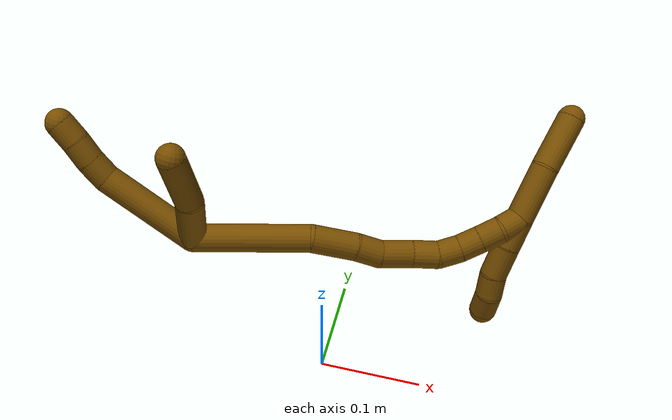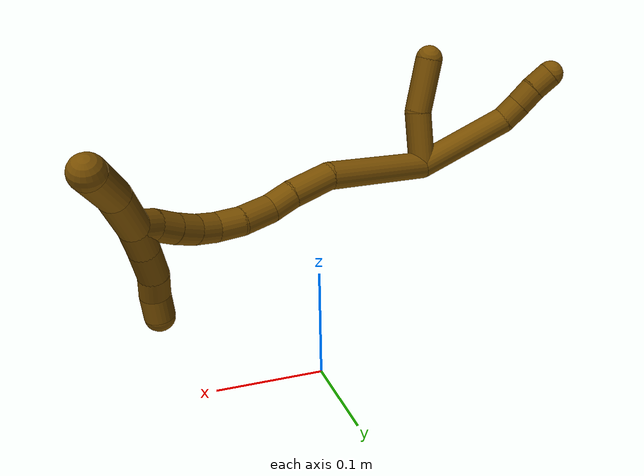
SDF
<sdf version="1.7">
 <world name="default">
  <model name="12">
   <static>0</static>
   <link name="12">
    <collision name="collision-cylinder-e_1_2_8">
     <pose>-0.041397 0.004886 0.016198 -0.292952 -1.18282 0.197521</pose>
     <geometry><cylinder><radius>0.0125</radius><length>0.089441</length></cylinder></geometry>
     <surface>
      <friction><ode><mu>1.16</mu><mu2>1.16</mu2><slip1>0</slip1><slip2>0</slip2></ode></friction>
      <contact><ode><kp>1e+06</kp><kd>1</kd><max_vel>0</max_vel><min_depth>0.001</min_depth></ode></contact>
     </surface>
    </collision>
    <visual name="visual-cylinder-e_1_2_8">
     <pose>-0.041397 0.004886 0.016198 -0.292952 -1.18282 0.197521</pose>
     <geometry><cylinder><radius>0.0125</radius><length>0.089441</length></cylinder></geometry>
     <material><ambient>0.466667 0.301961 0 1</ambient></material>
    </visual>
    <collision name="collision-cylinder-e_2_8_9">
     <pose>-0.090848 0.009129 0.038418 0.106281 -0.926094 -0.053098</pose>
     <geometry><cylinder><radius>0.0125</radius><length>0.020156</length></cylinder></geometry>
     <surface>
      <friction><ode><mu>1.16</mu><mu2>1.16</mu2><slip1>0</slip1><slip2>0</slip2></ode></friction>
      <contact><ode><kp>1e+06</kp><kd>1</kd><max_vel>0</max_vel><min_depth>0.001</min_depth></ode></contact>
     </surface>
    </collision>
    <visual name="visual-cylinder-e_2_8_9">
     <pose>-0.090848 0.009129 0.038418 0.106281 -0.926094 -0.053098</pose>
     <geometry><cylinder><radius>0.0125</radius><length>0.020156</length></cylinder></geometry>
     <material><ambient>0.466667 0.301961 0 1</ambient></material>
    </visual>
    <collision name="collision-cylinder-e_3_9_10">
     <pose>-0.106262 0.007947 0.051337 0.078016 -0.816191 -0.033746</pose>
     <geometry><cylinder><radius>0.0125</radius><length>0.0202</length></cylinder></geometry>
     <surface>
      <friction><ode><mu>1.16</mu><mu2>1.16</mu2><slip1>0</slip1><slip2>0</slip2></ode></friction>
      <contact><ode><kp>1e+06</kp><kd>1</kd><max_vel>0</max_vel><min_depth>0.001</min_depth></ode></contact>
     </surface>
    </collision>
    <visual name="visual-cylinder-e_3_9_10">
     <pose>-0.106262 0.007947 0.051337 0.078016 -0.816191 -0.033746</pose>
     <geometry><cylinder><radius>0.0125</radius><length>0.0202</length></cylinder></geometry>
     <material><ambient>0.466667 0.301961 0 1</ambient></material>
    </visual>
    <collision name="collision-cylinder-e_4_10_6">
     <pose>-0.121576 0.007657 0.064454 -0.040054 -0.906952 0.019522</pose>
     <geometry><cylinder><radius>0.0125</radius><length>0.020203</length></cylinder></geometry>
     <surface>
      <friction><ode><mu>1.16</mu><mu2>1.16</mu2><slip1>0</slip1><slip2>0</slip2></ode></friction>
      <contact><ode><kp>1e+06</kp><kd>1</kd><max_vel>0</max_vel><min_depth>0.001</min_depth></ode></contact>
     </surface>
    </collision>
    <visual name="visual-cylinder-e_4_10_6">
     <pose>-0.121576 0.007657 0.064454 -0.040054 -0.906952 0.019522</pose>
     <geometry><cylinder><radius>0.0125</radius><length>0.020203</length></cylinder></geometry>
     <material><ambient>0.466667 0.301961 0 1</ambient></material>
    </visual>
    <collision name="collision-cylinder-e_1_2_11">
     <pose>-0.004581 -0.015478 0.019566 0.669266 -0.181618 -0.063303</pose>
     <geometry><cylinder><radius>0.0125</radius><length>0.05073</length></cylinder></geometry>
     <surface>
      <friction><ode><mu>1.16</mu><mu2>1.16</mu2><slip1>0</slip1><slip2>0</slip2></ode></friction>
      <contact><ode><kp>1e+06</kp><kd>1</kd><max_vel>0</max_vel><min_depth>0.001</min_depth></ode></contact>
     </surface>
    </collision>
    <visual name="visual-cylinder-e_1_2_11">
     <pose>-0.004581 -0.015478 0.019566 0.669266 -0.181618 -0.063303</pose>
     <geometry><cylinder><radius>0.0125</radius><length>0.05073</length></cylinder></geometry>
     <material><ambient>0.466667 0.301961 0 1</ambient></material>
    </visual>
    <collision name="collision-cylinder-e_2_11_5">
     <pose>-0.019917 -0.042709 0.057922 0.558963 -0.451753 -0.13171</pose>
     <geometry><cylinder><radius>0.0125</radius><length>0.04927</length></cylinder></geometry>
     <surface>
      <friction><ode><mu>1.16</mu><mu2>1.16</mu2><slip1>0</slip1><slip2>0</slip2></ode></friction>
      <contact><ode><kp>1e+06</kp><kd>1</kd><max_vel>0</max_vel><min_depth>0.001</min_depth></ode></contact>
     </surface>
    </collision>
    <visual name="visual-cylinder-e_2_11_5">
     <pose>-0.019917 -0.042709 0.057922 0.558963 -0.451753 -0.13171</pose>
     <geometry><cylinder><radius>0.0125</radius><length>0.04927</length></cylinder></geometry>
     <material><ambient>0.466667 0.301961 0 1</ambient></material>
    </visual>
    <collision name="collision-cylinder-e_1_2_12">
     <pose>0.049775 -0.005451 0.012964 0.398003 1.29543 0.302835</pose>
     <geometry><cylinder><radius>0.0125</radius><length>0.103448</length></cylinder></geometry>
     <surface>
      <friction><ode><mu>1.16</mu><mu2>1.16</mu2><slip1>0</slip1><slip2>0</slip2></ode></friction>
      <contact><ode><kp>1e+06</kp><kd>1</kd><max_vel>0</max_vel><min_depth>0.001</min_depth></ode></contact>
     </surface>
    </collision>
    <visual name="visual-cylinder-e_1_2_12">
     <pose>0.049775 -0.005451 0.012964 0.398003 1.29543 0.302835</pose>
     <geometry><cylinder><radius>0.0125</radius><length>0.103448</length></cylinder></geometry>
     <material><ambient>0.466667 0.301961 0 1</ambient></material>
    </visual>
    <collision name="collision-cylinder-e_2_12_13">
     <pose>0.119541 -0.009192 0.026136 -1.44997 1.48487 -1.3651</pose>
     <geometry><cylinder><radius>0.0125</radius><length>0.040129</length></cylinder></geometry>
     <surface>
      <friction><ode><mu>1.16</mu><mu2>1.16</mu2><slip1>0</slip1><slip2>0</slip2></ode></friction>
      <contact><ode><kp>1e+06</kp><kd>1</kd><max_vel>0</max_vel><min_depth>0.001</min_depth></ode></contact>
     </surface>
    </collision>
    <visual name="visual-cylinder-e_2_12_13">
     <pose>0.119541 -0.009192 0.026136 -1.44997 1.48487 -1.3651</pose>
     <geometry><cylinder><radius>0.0125</radius><length>0.040129</length></cylinder></geometry>
     <material><ambient>0.466667 0.301961 0 1</ambient></material>
    </visual>
    <collision name="collision-cylinder-e_3_13_14">
     <pose>0.150902 -0.005744 0.02506 -2.2068 1.38294 -2.04659</pose>
     <geometry><cylinder><radius>0.0125</radius><length>0.023148</length></cylinder></geometry>
     <surface>
      <friction><ode><mu>1.16</mu><mu2>1.16</mu2><slip1>0</slip1><slip2>0</slip2></ode></friction>
      <contact><ode><kp>1e+06</kp><kd>1</kd><max_vel>0</max_vel><min_depth>0.001</min_depth></ode></contact>
     </surface>
    </collision>
    <visual name="visual-cylinder-e_3_13_14">
     <pose>0.150902 -0.005744 0.02506 -2.2068 1.38294 -2.04659</pose>
     <geometry><cylinder><radius>0.0125</radius><length>0.023148</length></cylinder></geometry>
     <material><ambient>0.466667 0.301961 0 1</ambient></material>
    </visual>
    <collision name="collision-cylinder-e_4_14_15">
     <pose>0.176736 -0.001876 0.026481 -0.666769 1.33715 -0.534063</pose>
     <geometry><cylinder><radius>0.0125</radius><length>0.029735</length></cylinder></geometry>
     <surface>
      <friction><ode><mu>1.16</mu><mu2>1.16</mu2><slip1>0</slip1><slip2>0</slip2></ode></friction>
      <contact><ode><kp>1e+06</kp><kd>1</kd><max_vel>0</max_vel><min_depth>0.001</min_depth></ode></contact>
     </surface>
    </collision>
    <visual name="visual-cylinder-e_4_14_15">
     <pose>0.176736 -0.001876 0.026481 -0.666769 1.33715 -0.534063</pose>
     <geometry><cylinder><radius>0.0125</radius><length>0.029735</length></cylinder></geometry>
     <material><ambient>0.466667 0.301961 0 1</ambient></material>
    </visual>
    <collision name="collision-cylinder-e_5_15_16">
     <pose>0.202713 -0.000265 0.031523 0.218221 1.36577 0.177749</pose>
     <geometry><cylinder><radius>0.0125</radius><length>0.023519</length></cylinder></geometry>
     <surface>
      <friction><ode><mu>1.16</mu><mu2>1.16</mu2><slip1>0</slip1><slip2>0</slip2></ode></friction>
      <contact><ode><kp>1e+06</kp><kd>1</kd><max_vel>0</max_vel><min_depth>0.001</min_depth></ode></contact>
     </surface>
    </collision>
    <visual name="visual-cylinder-e_5_15_16">
     <pose>0.202713 -0.000265 0.031523 0.218221 1.36577 0.177749</pose>
     <geometry><cylinder><radius>0.0125</radius><length>0.023519</length></cylinder></geometry>
     <material><ambient>0.466667 0.301961 0 1</ambient></material>
    </visual>
    <collision name="collision-cylinder-e_6_16_17">
     <pose>0.222974 -0.000137 0.038679 -0.133381 1.0636 -0.07855</pose>
     <geometry><cylinder><radius>0.0125</radius><length>0.020016</length></cylinder></geometry>
     <surface>
      <friction><ode><mu>1.16</mu><mu2>1.16</mu2><slip1>0</slip1><slip2>0</slip2></ode></friction>
      <contact><ode><kp>1e+06</kp><kd>1</kd><max_vel>0</max_vel><min_depth>0.001</min_depth></ode></contact>
     </surface>
    </collision>
    <visual name="visual-cylinder-e_6_16_17">
     <pose>0.222974 -0.000137 0.038679 -0.133381 1.0636 -0.07855</pose>
     <geometry><cylinder><radius>0.0125</radius><length>0.020016</length></cylinder></geometry>
     <material><ambient>0.466667 0.301961 0 1</ambient></material>
    </visual>
    <collision name="collision-cylinder-e_7_17_18">
     <pose>0.239609 0.000729 0.049641 -0.03584 0.908625 -0.017505</pose>
     <geometry><cylinder><radius>0.0125</radius><length>0.02</length></cylinder></geometry>
     <surface>
      <friction><ode><mu>1.16</mu><mu2>1.16</mu2><slip1>0</slip1><slip2>0</slip2></ode></friction>
      <contact><ode><kp>1e+06</kp><kd>1</kd><max_vel>0</max_vel><min_depth>0.001</min_depth></ode></contact>
     </surface>
    </collision>
    <visual name="visual-cylinder-e_7_17_18">
     <pose>0.239609 0.000729 0.049641 -0.03584 0.908625 -0.017505</pose>
     <geometry><cylinder><radius>0.0125</radius><length>0.02</length></cylinder></geometry>
     <material><ambient>0.466667 0.301961 0 1</ambient></material>
    </visual>
    <collision name="collision-cylinder-e_8_18_19">
     <pose>0.255047 0.000583 0.062333 0.05595 0.855709 0.02552</pose>
     <geometry><cylinder><radius>0.0125</radius><length>0.020001</length></cylinder></geometry>
     <surface>
      <friction><ode><mu>1.16</mu><mu2>1.16</mu2><slip1>0</slip1><slip2>0</slip2></ode></friction>
      <contact><ode><kp>1e+06</kp><kd>1</kd><max_vel>0</max_vel><min_depth>0.001</min_depth></ode></contact>
     </surface>
    </collision>
    <visual name="visual-cylinder-e_8_18_19">
     <pose>0.255047 0.000583 0.062333 0.05595 0.855709 0.02552</pose>
     <geometry><cylinder><radius>0.0125</radius><length>0.020001</length></cylinder></geometry>
     <material><ambient>0.466667 0.301961 0 1</ambient></material>
    </visual>
    <collision name="collision-cylinder-e_9_19_1">
     <pose>0.270091 0.002473 0.075108 -0.347644 0.846875 -0.157952</pose>
     <geometry><cylinder><radius>0.0125</radius><length>0.020003</length></cylinder></geometry>
     <surface>
      <friction><ode><mu>1.16</mu><mu2>1.16</mu2><slip1>0</slip1><slip2>0</slip2></ode></friction>
      <contact><ode><kp>1e+06</kp><kd>1</kd><max_vel>0</max_vel><min_depth>0.001</min_depth></ode></contact>
     </surface>
    </collision>
    <visual name="visual-cylinder-e_9_19_1">
     <pose>0.270091 0.002473 0.075108 -0.347644 0.846875 -0.157952</pose>
     <geometry><cylinder><radius>0.0125</radius><length>0.020003</length></cylinder></geometry>
     <material><ambient>0.466667 0.301961 0 1</ambient></material>
    </visual>
    <collision name="collision-cylinder-e_1_1_20">
     <pose>0.282625 0.008021 0.105695 -0.134294 0.202287 -0.01365</pose>
     <geometry><cylinder><radius>0.0125</radius><length>0.050185</length></cylinder></geometry>
     <surface>
      <friction><ode><mu>1.16</mu><mu2>1.16</mu2><slip1>0</slip1><slip2>0</slip2></ode></friction>
      <contact><ode><kp>1e+06</kp><kd>1</kd><max_vel>0</max_vel><min_depth>0.001</min_depth></ode></contact>
     </surface>
    </collision>
    <visual name="visual-cylinder-e_1_1_20">
     <pose>0.282625 0.008021 0.105695 -0.134294 0.202287 -0.01365</pose>
     <geometry><cylinder><radius>0.0125</radius><length>0.050185</length></cylinder></geometry>
     <material><ambient>0.466667 0.301961 0 1</ambient></material>
    </visual>
    <collision name="collision-cylinder-e_2_20_4">
     <pose>0.294728 0.01868 0.152775 -0.313588 0.287423 -0.045747</pose>
     <geometry><cylinder><radius>0.0125</radius><length>0.049815</length></cylinder></geometry>
     <surface>
      <friction><ode><mu>1.16</mu><mu2>1.16</mu2><slip1>0</slip1><slip2>0</slip2></ode></friction>
      <contact><ode><kp>1e+06</kp><kd>1</kd><max_vel>0</max_vel><min_depth>0.001</min_depth></ode></contact>
     </surface>
    </collision>
    <visual name="visual-cylinder-e_2_20_4">
     <pose>0.294728 0.01868 0.152775 -0.313588 0.287423 -0.045747</pose>
     <geometry><cylinder><radius>0.0125</radius><length>0.049815</length></cylinder></geometry>
     <material><ambient>0.466667 0.301961 0 1</ambient></material>
    </visual>
    <collision name="collision-cylinder-e_1_1_21">
     <pose>0.276097 0.00575 0.067813 -3.06631 -0.10919 1.9349</pose>
     <geometry><cylinder><radius>0.0125</radius><length>0.027285</length></cylinder></geometry>
     <surface>
      <friction><ode><mu>1.16</mu><mu2>1.16</mu2><slip1>0</slip1><slip2>0</slip2></ode></friction>
      <contact><ode><kp>1e+06</kp><kd>1</kd><max_vel>0</max_vel><min_depth>0.001</min_depth></ode></contact>
     </surface>
    </collision>
    <visual name="visual-cylinder-e_1_1_21">
     <pose>0.276097 0.00575 0.067813 -3.06631 -0.10919 1.9349</pose>
     <geometry><cylinder><radius>0.0125</radius><length>0.027285</length></cylinder></geometry>
     <material><ambient>0.466667 0.301961 0 1</ambient></material>
    </visual>
    <collision name="collision-cylinder-e_2_21_22">
     <pose>0.273573 0.009314 0.039392 -2.97246 -0.068573 0.768998</pose>
     <geometry><cylinder><radius>0.0125</radius><length>0.030298</length></cylinder></geometry>
     <surface>
      <friction><ode><mu>1.16</mu><mu2>1.16</mu2><slip1>0</slip1><slip2>0</slip2></ode></friction>
      <contact><ode><kp>1e+06</kp><kd>1</kd><max_vel>0</max_vel><min_depth>0.001</min_depth></ode></contact>
     </surface>
    </collision>
    <visual name="visual-cylinder-e_2_21_22">
     <pose>0.273573 0.009314 0.039392 -2.97246 -0.068573 0.768998</pose>
     <geometry><cylinder><radius>0.0125</radius><length>0.030298</length></cylinder></geometry>
     <material><ambient>0.466667 0.301961 0 1</ambient></material>
    </visual>
    <collision name="collision-cylinder-e_3_22_23">
     <pose>0.273992 0.013922 0.014214 -2.94341 0.138093 -1.21557</pose>
     <geometry><cylinder><radius>0.0125</radius><length>0.021172</length></cylinder></geometry>
     <surface>
      <friction><ode><mu>1.16</mu><mu2>1.16</mu2><slip1>0</slip1><slip2>0</slip2></ode></friction>
      <contact><ode><kp>1e+06</kp><kd>1</kd><max_vel>0</max_vel><min_depth>0.001</min_depth></ode></contact>
     </surface>
    </collision>
    <visual name="visual-cylinder-e_3_22_23">
     <pose>0.273992 0.013922 0.014214 -2.94341 0.138093 -1.21557</pose>
     <geometry><cylinder><radius>0.0125</radius><length>0.021172</length></cylinder></geometry>
     <material><ambient>0.466667 0.301961 0 1</ambient></material>
    </visual>
    <collision name="collision-cylinder-e_4_23_3">
     <pose>0.276462 0.020723 -0.00552 -2.67718 0.095537 -0.398936</pose>
     <geometry><cylinder><radius>0.0125</radius><length>0.021245</length></cylinder></geometry>
     <surface>
      <friction><ode><mu>1.16</mu><mu2>1.16</mu2><slip1>0</slip1><slip2>0</slip2></ode></friction>
      <contact><ode><kp>1e+06</kp><kd>1</kd><max_vel>0</max_vel><min_depth>0.001</min_depth></ode></contact>
     </surface>
    </collision>
    <visual name="visual-cylinder-e_4_23_3">
     <pose>0.276462 0.020723 -0.00552 -2.67718 0.095537 -0.398936</pose>
     <geometry><cylinder><radius>0.0125</radius><length>0.021245</length></cylinder></geometry>
     <material><ambient>0.466667 0.301961 0 1</ambient></material>
    </visual>
    <collision name="collision-sphere-3">
     <pose>0.277476 0.025459 -0.014974 0 -0 0</pose>
     <geometry><sphere><radius>0.0125</radius></sphere></geometry>
     <surface>
      <friction><ode><mu>1.16</mu><mu2>1.16</mu2><slip1>0</slip1><slip2>0</slip2></ode></friction>
      <contact><ode><kp>1e+06</kp><kd>1</kd><max_vel>0</max_vel><min_depth>0.001</min_depth></ode></contact>
     </surface>
    </collision>
    <visual name="visual-sphere-3">
     <pose>0.277476 0.025459 -0.014974 0 -0 0</pose>
     <geometry><sphere><radius>0.0125</radius></sphere></geometry>
     <material><ambient>0.466667 0.301961 0 1</ambient></material>
    </visual>
    <collision name="collision-sphere-23">
     <pose>0.275449 0.015986 0.003935 0 -0 0</pose>
     <geometry><sphere><radius>0.0125</radius></sphere></geometry>
     <surface>
      <friction><ode><mu>1.16</mu><mu2>1.16</mu2><slip1>0</slip1><slip2>0</slip2></ode></friction>
      <contact><ode><kp>1e+06</kp><kd>1</kd><max_vel>0</max_vel><min_depth>0.001</min_depth></ode></contact>
     </surface>
    </collision>
    <visual name="visual-sphere-23">
     <pose>0.275449 0.015986 0.003935 0 -0 0</pose>
     <geometry><sphere><radius>0.0125</radius></sphere></geometry>
     <material><ambient>0.466667 0.301961 0 1</ambient></material>
    </visual>
    <collision name="collision-sphere-22">
     <pose>0.272535 0.011858 0.024494 0 -0 0</pose>
     <geometry><sphere><radius>0.0125</radius></sphere></geometry>
     <surface>
      <friction><ode><mu>1.16</mu><mu2>1.16</mu2><slip1>0</slip1><slip2>0</slip2></ode></friction>
      <contact><ode><kp>1e+06</kp><kd>1</kd><max_vel>0</max_vel><min_depth>0.001</min_depth></ode></contact>
     </surface>
    </collision>
    <visual name="visual-sphere-22">
     <pose>0.272535 0.011858 0.024494 0 -0 0</pose>
     <geometry><sphere><radius>0.0125</radius></sphere></geometry>
     <material><ambient>0.466667 0.301961 0 1</ambient></material>
    </visual>
    <collision name="collision-sphere-21">
     <pose>0.274611 0.00677 0.05429 0 -0 0</pose>
     <geometry><sphere><radius>0.0125</radius></sphere></geometry>
     <surface>
      <friction><ode><mu>1.16</mu><mu2>1.16</mu2><slip1>0</slip1><slip2>0</slip2></ode></friction>
      <contact><ode><kp>1e+06</kp><kd>1</kd><max_vel>0</max_vel><min_depth>0.001</min_depth></ode></contact>
     </surface>
    </collision>
    <visual name="visual-sphere-21">
     <pose>0.274611 0.00677 0.05429 0 -0 0</pose>
     <geometry><sphere><radius>0.0125</radius></sphere></geometry>
     <material><ambient>0.466667 0.301961 0 1</ambient></material>
    </visual>
    <collision name="collision-sphere-4">
     <pose>0.301788 0.026049 0.175496 0 -0 0</pose>
     <geometry><sphere><radius>0.0125</radius></sphere></geometry>
     <surface>
      <friction><ode><mu>1.16</mu><mu2>1.16</mu2><slip1>0</slip1><slip2>0</slip2></ode></friction>
      <contact><ode><kp>1e+06</kp><kd>1</kd><max_vel>0</max_vel><min_depth>0.001</min_depth></ode></contact>
     </surface>
    </collision>
    <visual name="visual-sphere-4">
     <pose>0.301788 0.026049 0.175496 0 -0 0</pose>
     <geometry><sphere><radius>0.0125</radius></sphere></geometry>
     <material><ambient>0.466667 0.301961 0 1</ambient></material>
    </visual>
    <collision name="collision-sphere-20">
     <pose>0.287667 0.011312 0.130054 0 -0 0</pose>
     <geometry><sphere><radius>0.0125</radius></sphere></geometry>
     <surface>
      <friction><ode><mu>1.16</mu><mu2>1.16</mu2><slip1>0</slip1><slip2>0</slip2></ode></friction>
      <contact><ode><kp>1e+06</kp><kd>1</kd><max_vel>0</max_vel><min_depth>0.001</min_depth></ode></contact>
     </surface>
    </collision>
    <visual name="visual-sphere-20">
     <pose>0.287667 0.011312 0.130054 0 -0 0</pose>
     <geometry><sphere><radius>0.0125</radius></sphere></geometry>
     <material><ambient>0.466667 0.301961 0 1</ambient></material>
    </visual>
    <collision name="collision-sphere-11">
     <pose>-0.009163 -0.030955 0.039132 0 -0 0</pose>
     <geometry><sphere><radius>0.0125</radius></sphere></geometry>
     <surface>
      <friction><ode><mu>1.16</mu><mu2>1.16</mu2><slip1>0</slip1><slip2>0</slip2></ode></friction>
      <contact><ode><kp>1e+06</kp><kd>1</kd><max_vel>0</max_vel><min_depth>0.001</min_depth></ode></contact>
     </surface>
    </collision>
    <visual name="visual-sphere-11">
     <pose>-0.009163 -0.030955 0.039132 0 -0 0</pose>
     <geometry><sphere><radius>0.0125</radius></sphere></geometry>
     <material><ambient>0.466667 0.301961 0 1</ambient></material>
    </visual>
    <collision name="collision-sphere-6">
     <pose>-0.129533 0.007907 0.070673 0 -0 0</pose>
     <geometry><sphere><radius>0.0125</radius></sphere></geometry>
     <surface>
      <friction><ode><mu>1.16</mu><mu2>1.16</mu2><slip1>0</slip1><slip2>0</slip2></ode></friction>
      <contact><ode><kp>1e+06</kp><kd>1</kd><max_vel>0</max_vel><min_depth>0.001</min_depth></ode></contact>
     </surface>
    </collision>
    <visual name="visual-sphere-6">
     <pose>-0.129533 0.007907 0.070673 0 -0 0</pose>
     <geometry><sphere><radius>0.0125</radius></sphere></geometry>
     <material><ambient>0.466667 0.301961 0 1</ambient></material>
    </visual>
    <collision name="collision-sphere-10">
     <pose>-0.11362 0.007408 0.058235 0 -0 0</pose>
     <geometry><sphere><radius>0.0125</radius></sphere></geometry>
     <surface>
      <friction><ode><mu>1.16</mu><mu2>1.16</mu2><slip1>0</slip1><slip2>0</slip2></ode></friction>
      <contact><ode><kp>1e+06</kp><kd>1</kd><max_vel>0</max_vel><min_depth>0.001</min_depth></ode></contact>
     </surface>
    </collision>
    <visual name="visual-sphere-10">
     <pose>-0.11362 0.007408 0.058235 0 -0 0</pose>
     <geometry><sphere><radius>0.0125</radius></sphere></geometry>
     <material><ambient>0.466667 0.301961 0 1</ambient></material>
    </visual>
    <collision name="collision-sphere-9">
     <pose>-0.098904 0.008487 0.04444 0 -0 0</pose>
     <geometry><sphere><radius>0.0125</radius></sphere></geometry>
     <surface>
      <friction><ode><mu>1.16</mu><mu2>1.16</mu2><slip1>0</slip1><slip2>0</slip2></ode></friction>
      <contact><ode><kp>1e+06</kp><kd>1</kd><max_vel>0</max_vel><min_depth>0.001</min_depth></ode></contact>
     </surface>
    </collision>
    <visual name="visual-sphere-9">
     <pose>-0.098904 0.008487 0.04444 0 -0 0</pose>
     <geometry><sphere><radius>0.0125</radius></sphere></geometry>
     <material><ambient>0.466667 0.301961 0 1</ambient></material>
    </visual>
    <collision name="collision-sphere-2">
     <geometry><sphere><radius>0.0125</radius></sphere></geometry>
     <surface>
      <friction><ode><mu>1.16</mu><mu2>1.16</mu2><slip1>0</slip1><slip2>0</slip2></ode></friction>
      <contact><ode><kp>1e+06</kp><kd>1</kd><max_vel>0</max_vel><min_depth>0.001</min_depth></ode></contact>
     </surface>
    </collision>
    <visual name="visual-sphere-2">
     <geometry><sphere><radius>0.0125</radius></sphere></geometry>
     <material><ambient>0.466667 0.301961 0 1</ambient></material>
    </visual>
    <collision name="collision-sphere-19">
     <pose>0.262598 0.000216 0.06888 0 -0 0</pose>
     <geometry><sphere><radius>0.0125</radius></sphere></geometry>
     <surface>
      <friction><ode><mu>1.16</mu><mu2>1.16</mu2><slip1>0</slip1><slip2>0</slip2></ode></friction>
      <contact><ode><kp>1e+06</kp><kd>1</kd><max_vel>0</max_vel><min_depth>0.001</min_depth></ode></contact>
     </surface>
    </collision>
    <visual name="visual-sphere-19">
     <pose>0.262598 0.000216 0.06888 0 -0 0</pose>
     <geometry><sphere><radius>0.0125</radius></sphere></geometry>
     <material><ambient>0.466667 0.301961 0 1</ambient></material>
    </visual>
    <collision name="collision-sphere-8">
     <pose>-0.082793 0.009771 0.032396 0 -0 0</pose>
     <geometry><sphere><radius>0.0125</radius></sphere></geometry>
     <surface>
      <friction><ode><mu>1.16</mu><mu2>1.16</mu2><slip1>0</slip1><slip2>0</slip2></ode></friction>
      <contact><ode><kp>1e+06</kp><kd>1</kd><max_vel>0</max_vel><min_depth>0.001</min_depth></ode></contact>
     </surface>
    </collision>
    <visual name="visual-sphere-8">
     <pose>-0.082793 0.009771 0.032396 0 -0 0</pose>
     <geometry><sphere><radius>0.0125</radius></sphere></geometry>
     <material><ambient>0.466667 0.301961 0 1</ambient></material>
    </visual>
    <collision name="collision-sphere-5">
     <pose>-0.030672 -0.054463 0.076713 0 -0 0</pose>
     <geometry><sphere><radius>0.0125</radius></sphere></geometry>
     <surface>
      <friction><ode><mu>1.16</mu><mu2>1.16</mu2><slip1>0</slip1><slip2>0</slip2></ode></friction>
      <contact><ode><kp>1e+06</kp><kd>1</kd><max_vel>0</max_vel><min_depth>0.001</min_depth></ode></contact>
     </surface>
    </collision>
    <visual name="visual-sphere-5">
     <pose>-0.030672 -0.054463 0.076713 0 -0 0</pose>
     <geometry><sphere><radius>0.0125</radius></sphere></geometry>
     <material><ambient>0.466667 0.301961 0 1</ambient></material>
    </visual>
    <collision name="collision-sphere-12">
     <pose>0.09955 -0.010902 0.025929 0 -0 0</pose>
     <geometry><sphere><radius>0.0125</radius></sphere></geometry>
     <surface>
      <friction><ode><mu>1.16</mu><mu2>1.16</mu2><slip1>0</slip1><slip2>0</slip2></ode></friction>
      <contact><ode><kp>1e+06</kp><kd>1</kd><max_vel>0</max_vel><min_depth>0.001</min_depth></ode></contact>
     </surface>
    </collision>
    <visual name="visual-sphere-12">
     <pose>0.09955 -0.010902 0.025929 0 -0 0</pose>
     <geometry><sphere><radius>0.0125</radius></sphere></geometry>
     <material><ambient>0.466667 0.301961 0 1</ambient></material>
    </visual>
    <collision name="collision-sphere-13">
     <pose>0.139531 -0.007483 0.026344 0 -0 0</pose>
     <geometry><sphere><radius>0.0125</radius></sphere></geometry>
     <surface>
      <friction><ode><mu>1.16</mu><mu2>1.16</mu2><slip1>0</slip1><slip2>0</slip2></ode></friction>
      <contact><ode><kp>1e+06</kp><kd>1</kd><max_vel>0</max_vel><min_depth>0.001</min_depth></ode></contact>
     </surface>
    </collision>
    <visual name="visual-sphere-13">
     <pose>0.139531 -0.007483 0.026344 0 -0 0</pose>
     <geometry><sphere><radius>0.0125</radius></sphere></geometry>
     <material><ambient>0.466667 0.301961 0 1</ambient></material>
    </visual>
    <collision name="collision-sphere-14">
     <pose>0.162272 -0.004005 0.023776 0 -0 0</pose>
     <geometry><sphere><radius>0.0125</radius></sphere></geometry>
     <surface>
      <friction><ode><mu>1.16</mu><mu2>1.16</mu2><slip1>0</slip1><slip2>0</slip2></ode></friction>
      <contact><ode><kp>1e+06</kp><kd>1</kd><max_vel>0</max_vel><min_depth>0.001</min_depth></ode></contact>
     </surface>
    </collision>
    <visual name="visual-sphere-14">
     <pose>0.162272 -0.004005 0.023776 0 -0 0</pose>
     <geometry><sphere><radius>0.0125</radius></sphere></geometry>
     <material><ambient>0.466667 0.301961 0 1</ambient></material>
    </visual>
    <collision name="collision-sphere-15">
     <pose>0.191199 0.000253 0.029186 0 -0 0</pose>
     <geometry><sphere><radius>0.0125</radius></sphere></geometry>
     <surface>
      <friction><ode><mu>1.16</mu><mu2>1.16</mu2><slip1>0</slip1><slip2>0</slip2></ode></friction>
      <contact><ode><kp>1e+06</kp><kd>1</kd><max_vel>0</max_vel><min_depth>0.001</min_depth></ode></contact>
     </surface>
    </collision>
    <visual name="visual-sphere-15">
     <pose>0.191199 0.000253 0.029186 0 -0 0</pose>
     <geometry><sphere><radius>0.0125</radius></sphere></geometry>
     <material><ambient>0.466667 0.301961 0 1</ambient></material>
    </visual>
    <collision name="collision-sphere-16">
     <pose>0.214226 -0.000784 0.033861 0 -0 0</pose>
     <geometry><sphere><radius>0.0125</radius></sphere></geometry>
     <surface>
      <friction><ode><mu>1.16</mu><mu2>1.16</mu2><slip1>0</slip1><slip2>0</slip2></ode></friction>
      <contact><ode><kp>1e+06</kp><kd>1</kd><max_vel>0</max_vel><min_depth>0.001</min_depth></ode></contact>
     </surface>
    </collision>
    <visual name="visual-sphere-16">
     <pose>0.214226 -0.000784 0.033861 0 -0 0</pose>
     <geometry><sphere><radius>0.0125</radius></sphere></geometry>
     <material><ambient>0.466667 0.301961 0 1</ambient></material>
    </visual>
    <collision name="collision-sphere-17">
     <pose>0.231722 0.000509 0.043497 0 -0 0</pose>
     <geometry><sphere><radius>0.0125</radius></sphere></geometry>
     <surface>
      <friction><ode><mu>1.16</mu><mu2>1.16</mu2><slip1>0</slip1><slip2>0</slip2></ode></friction>
      <contact><ode><kp>1e+06</kp><kd>1</kd><max_vel>0</max_vel><min_depth>0.001</min_depth></ode></contact>
     </surface>
    </collision>
    <visual name="visual-sphere-17">
     <pose>0.231722 0.000509 0.043497 0 -0 0</pose>
     <geometry><sphere><radius>0.0125</radius></sphere></geometry>
     <material><ambient>0.466667 0.301961 0 1</ambient></material>
    </visual>
    <collision name="collision-sphere-18">
     <pose>0.247496 0.00095 0.055786 0 -0 0</pose>
     <geometry><sphere><radius>0.0125</radius></sphere></geometry>
     <surface>
      <friction><ode><mu>1.16</mu><mu2>1.16</mu2><slip1>0</slip1><slip2>0</slip2></ode></friction>
      <contact><ode><kp>1e+06</kp><kd>1</kd><max_vel>0</max_vel><min_depth>0.001</min_depth></ode></contact>
     </surface>
    </collision>
    <visual name="visual-sphere-18">
     <pose>0.247496 0.00095 0.055786 0 -0 0</pose>
     <geometry><sphere><radius>0.0125</radius></sphere></geometry>
     <material><ambient>0.466667 0.301961 0 1</ambient></material>
    </visual>
    <collision name="collision-sphere-1">
     <pose>0.277584 0.00473 0.081336 0 -0 0</pose>
     <geometry><sphere><radius>0.0125</radius></sphere></geometry>
     <surface>
      <friction><ode><mu>1.16</mu><mu2>1.16</mu2><slip1>0</slip1><slip2>0</slip2></ode></friction>
      <contact><ode><kp>1e+06</kp><kd>1</kd><max_vel>0</max_vel><min_depth>0.001</min_depth></ode></contact>
     </surface>
    </collision>
    <visual name="visual-sphere-1">
     <pose>0.277584 0.00473 0.081336 0 -0 0</pose>
     <geometry><sphere><radius>0.0125</radius></sphere></geometry>
     <material><ambient>0.466667 0.301961 0 1</ambient></material>
    </visual>
    <inertial>
     <pose>0.117644 -0.000668 0.044755 0 -0 0</pose>
     <mass>0.75</mass>
     <inertia>
      <ixx>0.000129</ixx>
      <ixy>0</ixy>
      <ixz>0</ixz>
      <iyy>0.000235</iyy>
      <iyz>0</iyz>
      <izz>-2.2e-05</izz>
     </inertia>
    </inertial>
   </link>
   <pose>-0.110799 -0.020554 0.188575 -0.587403 0.24116 0.166393</pose>
  </model>
 </world>
</sdf>
